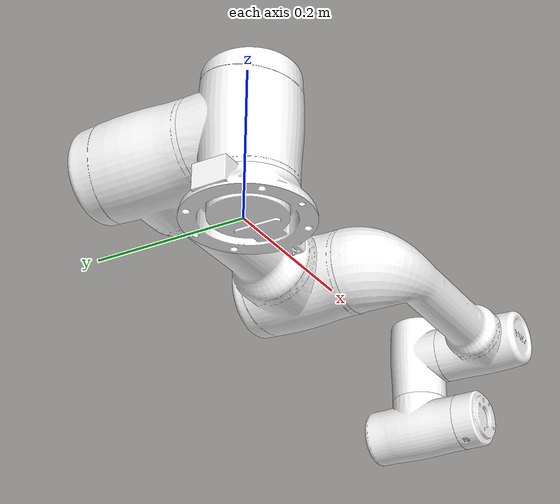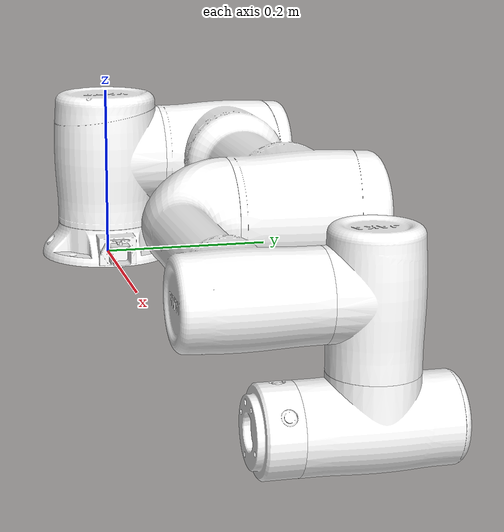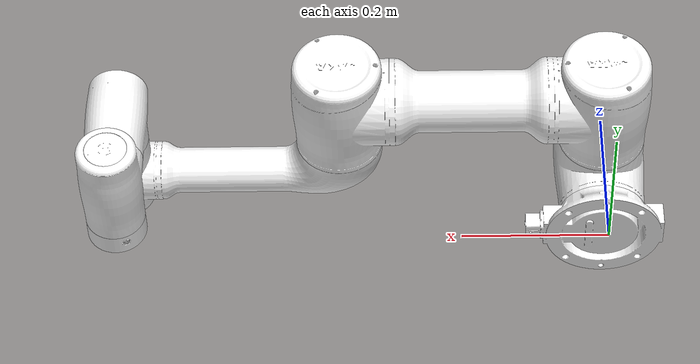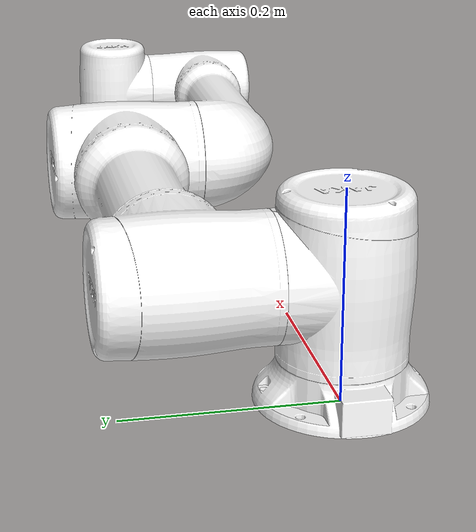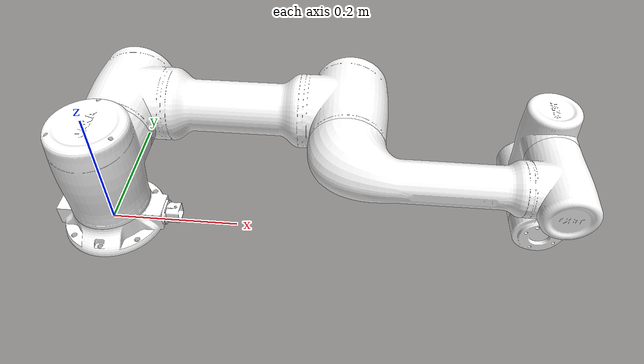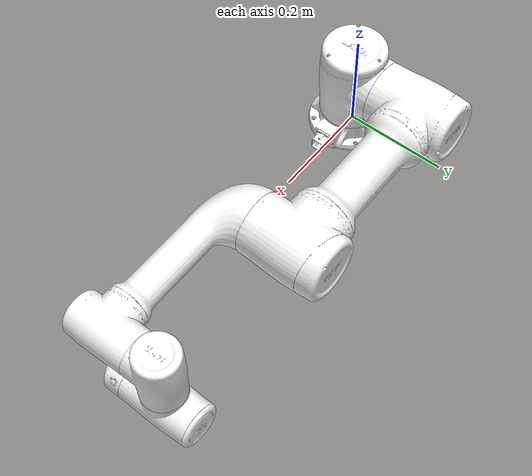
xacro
<?xml version="1.0" encoding="utf-8"?>
<robot name="jaka_description">
  <link name="world"/>
  <link name="base_link">
    <inertial>
      <origin xyz="0.0078045 0.02052 0.0017471" rpy="0 0 0" />
      <mass value="0.51461" />
      <inertia ixx="0.00062136" ixy="3.2169E-06" ixz="-3.6994E-09" iyy="0.0013529" iyz="1.2577E-10" izz="0.00086645" />
    </inertial>
    <visual>
      <origin xyz="0 0 0" rpy="0 0 0" />
      <geometry>
        <mesh filename="package://jaka_description/meshes/base_link.STL" />
      </geometry>
      <material name="">
        <color rgba="1 1 1 1" />
      </material>
    </visual>
    <collision>
      <origin xyz="0 0 0" rpy="0 0 0" />
      <geometry>
        <mesh filename="package://jaka_description/meshes/base_link.STL" />
      </geometry>
    </collision>
  </link>
  <joint name="fixed_joint" type="fixed">
    <origin xyz="0 0 0" rpy="0 0 0" />
    <parent link="world" />
    <child link="base_link" />

  </joint>
  <link name="link1">
    <inertial>
      <origin xyz="0.0033217 0.078637 -9.9561E-07" rpy="0 0 0" />
      <mass value="1.9281" />
      <inertia ixx="0.0054895" ixy="1.9288E-06" ixz="-8.0735E-09" iyy="0.0038887" iyz="-1.0336E-08" izz="0.0056434" />
    </inertial>
    <visual>
      <origin xyz="0 0 0" rpy="0 0 0" />
      <geometry>
        <mesh filename="package://jaka_description/meshes/link1.STL" />
      </geometry>
      <material name="">
        <color rgba="1 1 1 1" />
      </material>
    </visual>
    <collision>
      <origin xyz="0 0 0" rpy="0 0 0" />
      <geometry>
        <mesh filename="package://jaka_description/meshes/link1.STL" />
      </geometry>
    </collision>
  </link>
  <joint name="joint1" type="continuous">
    <origin xyz="0.0068395 -0.0017473 0.040967" rpy="1.5708 0 1.5708" />
    <parent link="base_link" />
    <child link="link1" />
    <axis xyz="0 1 0" />
  </joint>
  <link name="link2">
    <inertial>
      <origin xyz="0.180000209977346 0.0790053241117423 1.81612678296084E-06" rpy="0 0 0" />
      <mass value="5.46194601044026" />
      <inertia ixx="0.012915357360266" ixy="-3.31771617532355E-08" ixz="-9.02794658605086E-09" iyy="0.0177711235371075" iyz="-2.29869349851466E-09" izz="0.0212789850441894" />
    </inertial>
    <visual>
      <origin xyz="0 0 0" rpy="0 0 0" />
      <geometry>
        <mesh filename="package://jaka_description/meshes/link2.STL" />
      </geometry>
      <material name="">
        <color rgba="1 1 1 1" />
      </material>
    </visual>
    <collision>
      <origin xyz="0 0 0" rpy="0 0 0" />
      <geometry>
        <mesh filename="package://jaka_description/meshes/link2.STL" />
      </geometry>
    </collision>
  </link>
  <joint name="joint2" type="continuous">
    <origin xyz="0.06407 0.08015 0" rpy="-3.1416 -1.5708 1.5708" />
    <!-- rpy="-3.1416 0.61321 1.5708"-->
    <parent link="link1" />
    <child link="link2" />
    <axis xyz="0 -1 0" />
  </joint>
  <link name="link3">
    <inertial>
      <origin xyz="0.154631179365296 0.051491742581724 -9.87671775865007E-07" rpy="0 0 0" />
      <mass value="2.10990539238288" />
      <inertia ixx="0.002372120404392" ixy="-0.00148686871157693" ixz="1.61083887908488E-07" iyy="0.0128780808874665" iyz="1.06256446469924E-09" izz="0.0132375017255301" />
    </inertial>
    <visual>
      <origin xyz="0 0 0" rpy="0 0 0" />
      <geometry>
        <mesh filename="package://jaka_description/meshes/link3.STL" />
      </geometry>
      <material name="">
        <color rgba="1 1 1 1" />
      </material>
    </visual>
    <collision>
      <origin xyz="0 0 0" rpy="0 0 0" />
      <geometry>
        <mesh filename="package://jaka_description/meshes/link3.STL" />
      </geometry>
    </collision>
  </link>
  <joint name="joint3" type="continuous">
    <origin xyz="0.36 0 0" rpy="0 3.1415926 -3.1415926" />
    <parent link="link2" />
    <child link="link3" />
    <axis xyz="0 1 0" />
  </joint>
  <link name="link4">
    <inertial>
      <origin xyz="0.0427881295343883 -0.00580030295947631 -2.00896450974763E-07" rpy="0 0 0" />
      <mass value="0.707388000054209" />
      <inertia ixx="0.000872922108461203" ixy="5.07453713157777E-05" ixz="-1.05589941183124E-08" iyy="0.000659704928306989" iyz="1.157925987427E-09" izz="0.000903595145406074" />
    </inertial>
    <visual>
      <origin xyz="0 0 0" rpy="0 0 0" />
      <geometry>
        <mesh filename="package://jaka_description/meshes/link4.STL" />
      </geometry>
      <material name="">
        <color rgba="1 1 1 1" />
      </material>
    </visual>
    <collision>
      <origin xyz="0 0 0" rpy="0 0 0" />
      <geometry>
        <mesh filename="package://jaka_description/meshes/link4.STL" />
      </geometry>
    </collision>
  </link>
  <joint name="joint4" type="continuous">
    <origin xyz="0.303 -0.0054826 0" rpy="-1.5708 0 -1.5708" />
    <parent link="link3" />
    <child link="link4" />
    <axis xyz="-1 0 0" />
  </joint>
  <link name="link5">
    <inertial>
      <origin xyz="-0.0436288428352644 0.00288896862860181 -1.81856948805459E-07" rpy="0 0 0" />
      <mass value="0.806925581335565" />
      <inertia ixx="0.00160859857621588" ixy="5.47741545152081E-06" ixz="-2.28416053153104E-08" iyy="0.000744710609095292" iyz="5.43826453392794E-10" izz="0.00164590181184635" />
    </inertial>
    <visual>
      <origin xyz="0 0 0" rpy="0 0 0" />
      <geometry>
        <mesh filename="package://jaka_description/meshes/link5.STL" />
      </geometry>
      <material name="">
        <color rgba="1 1 1 1" />
      </material>
    </visual>
    <collision>
      <origin xyz="0 0 0" rpy="0 0 0" />
      <geometry>
        <mesh filename="package://jaka_description/meshes/link5.STL" />
      </geometry>
    </collision>
  </link>
  <joint name="joint5" type="continuous">
    <origin xyz="0.04546 -0.067529 0" rpy="3.1415926 0 1.5708" />
    <parent link="link4" />
    <child link="link5" />
    <axis xyz="-1 0 0" />
  </joint>
  <link name="link6">
    <inertial>
      <origin xyz="-1.97893143202288E-05 -0.0163465977451872 2.35599506187012E-05" rpy="0 0 0" />
      <mass value="0.180494526010387" />
      <inertia ixx="9.10588208598242E-05" ixy="7.56822704641209E-09" ixz="4.08010848564993E-07" iyy="0.000143814497302076" iyz="2.17936727532836E-07" izz="9.20388606659827E-05" />
    </inertial>
    <visual>
      <origin xyz="0 0 0" rpy="0 0 0" />
      <geometry>
        <mesh filename="package://jaka_description/meshes/link6.STL" />
      </geometry>
      <material name="">
        <color rgba="1 1 1 1" />
      </material>
    </visual>
    <collision>
      <origin xyz="0 0 0" rpy="0 0 0" />
      <geometry>
        <mesh filename="package://jaka_description/meshes/link6.STL" />
      </geometry>
    </collision>
  </link>
  <joint name="joint6" type="continuous">
    <origin xyz="-0.045971 -0.069408 0" rpy="0 -1.5708 0" />
    <parent link="link5" />
    <child link="link6" />
    <axis xyz="0 -1 0" />
  </joint>
  <link name="tool0"/>

  <joint name="tool_joint" type="fixed">
    <origin xyz="-0.045971 -0.069408 0" rpy="0 -1.5708 0" />
    <parent link="link6" />
    <child link="tool0" />
  </joint>

</robot>
